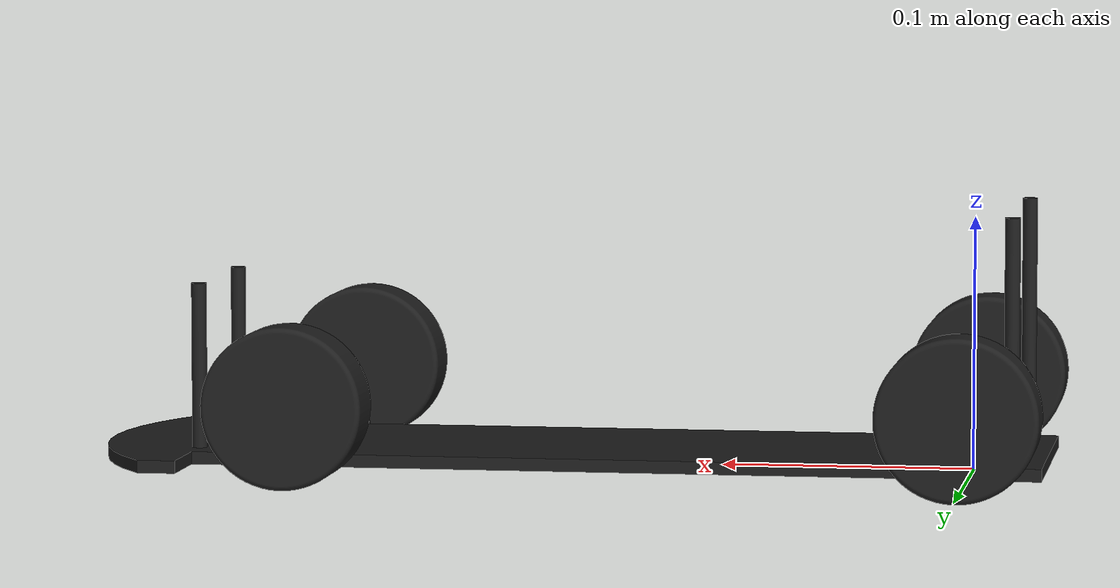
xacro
<?xml version="1.0"?>

<robot xmlns:xacro="http://www.ros.org/wiki/xacro" name="model_car">

    <xacro:property name="PI" value="3.1415926535897931"/>
    <xacro:property name="angle_limit" value="${PI/3.0}"/>
    <xacro:property name="wheel_width" value="0.001"/>

    <link name="base_link">
    </link>

    <link name="body">
        <inertial>
            <mass value="6"/>
            <origin xyz="0.15971917 0.00000000 0.00197764"/>
            <inertia ixx="0.0067970" ixy="0.0" ixz="-0.0008808"
                     iyy="0.0784672" iyz="0.0"
                     izz="0.0838770"/>
        </inertial>
        <visual>
            <origin xyz="0 0 0" rpy="0 0 0"/>
            <geometry>
                <mesh filename="package://car_robot_model/meshes/chassis.stl"/>
            </geometry>
            <material name="Black"/>
        </visual>
        <collision>
            <origin xyz="0 0 0" rpy="0 0 0"/>
            <geometry>
                <mesh filename="package://car_robot_model/meshes/chassis.stl"/>
            </geometry>
        </collision>
    </link>

    <joint name="base_link_to_body" type="fixed">
        <origin xyz="0.0 0 0.005" rpy="0 0 0"/>
        <parent link="base_link"/>
        <child link="body"/>
    </joint>

    <joint name="base_link_rear_left_wheel_joint" type="revolute">
        <origin xyz="0.0 -0.0825 0.03" rpy="${PI/2.0} 0 0"/>
        <axis xyz="0 0 1"/>
        <anchor xyz="0 0 0"/>
        <parent link="base_link"/>
        <child link="rear_left_wheel_link"/>
        <limit lower="-1000000000000.0" upper="1000000000000.0" effort="3.0" velocity="124"/>
    </joint>

    <transmission name="tran_rear_left">
        <type>transmission_interface/SimpleTransmission</type>
        <joint name="base_link_rear_left_wheel_joint">
            <hardwareInterface>hardware_interface/EffortJointInterface</hardwareInterface>
        </joint>
        <actuator name="rear_left_motor">
            <hardwareInterface>hardware_interface/EffortJointInterface</hardwareInterface>
            <mechanicalReduction>1</mechanicalReduction>
        </actuator>
    </transmission>

    <link name="rear_left_wheel_link">
        <inertial>
            <mass value="1"/>
            <origin xyz="0 0 0" rpy="0 0 0"/>
            <inertia ixx="0.0002946" ixy="0.0" ixz="0.0"
                     iyy="0.0002946" iyz="0.0"
                     izz="0.000494"/>
        </inertial>
        <visual>
            <origin xyz="0 0 0" rpy="0 0 0"/>
            <geometry>
                <mesh filename="package://car_robot_model/meshes/wheel.stl"/>
            </geometry>
            <material name="Black"/>
        </visual>
        <collision>
            <origin xyz="0 0 0" rpy="0 0 0"/>
            <geometry>
                <cylinder radius="0.0315" length="${wheel_width}"/>
            </geometry>
        </collision>
    </link>

    <joint name="base_link_rear_right_wheel_joint" type="revolute">
        <origin xyz="0.0 0.0825 0.03" rpy="-${PI/2.0} 0 0"/>
        <axis xyz="0 0 1"/>
        <anchor xyz="0 0 0"/>
        <parent link="base_link"/>
        <child link="rear_right_wheel_link"/>
        <limit lower="-1000000000000.0" upper="1000000000000.0" effort="3.0" velocity="124"/>
    </joint>

    <transmission name="tran_rear_right">
        <type>transmission_interface/SimpleTransmission</type>
        <joint name="base_link_rear_right_wheel_joint">
            <hardwareInterface>hardware_interface/EffortJointInterface</hardwareInterface>
        </joint>
        <actuator name="rear_right_motor">
            <hardwareInterface>hardware_interface/EffortJointInterface</hardwareInterface>
            <mechanicalReduction>1</mechanicalReduction>
        </actuator>
    </transmission>

    <link name="rear_right_wheel_link">
        <inertial>
            <mass value="1"/>
            <origin xyz="0 0 0" rpy="0 0 0"/>
            <inertia ixx="0.0002946" ixy="0.0" ixz="0.0"
                     iyy="0.0002946" iyz="0.0"
                     izz="0.0004940"/>
        </inertial>
        <visual>
            <origin xyz="0 0 0" rpy="0 0 0"/>
            <geometry>
                <mesh filename="package://car_robot_model/meshes/wheel.stl"/>
            </geometry>
            <material name="Black"/>
        </visual>
        <collision>
            <origin xyz="0 0 0" rpy="0 0 0"/>
            <geometry>
                <cylinder radius="0.0315" length="${wheel_width}"/>
            </geometry>
        </collision>
    </link>

    <joint name="base_link_front_left_axel_joint" type="revolute">
        <origin xyz="0.260 -0.0825 0.03" rpy="${PI/2.0} 0 0"/>
        <axis xyz="0 1 0"/>
        <anchor xyz="0 0 0"/>
        <parent link="base_link"/>
        <child link="front_left_axel_link"/>
        <limit lower="-${angle_limit}" upper="${angle_limit}" effort="9.6" velocity="5.3"/>
        <dynamics damping="0.2"/>
    </joint>

    <transmission name="tran_front_left_axel">
        <type>transmission_interface/SimpleTransmission</type>
        <joint name="base_link_front_left_axel_joint">
            <hardwareInterface>hardware_interface/EffortJointInterface</hardwareInterface>
        </joint>
        <actuator name="front_left_axel_motor">
            <hardwareInterface>hardware_interface/EffortJointInterface</hardwareInterface>
            <mechanicalReduction>1</mechanicalReduction>
        </actuator>
    </transmission>

    <link name="front_left_axel_link">
        <inertial>
            <mass value="0.001"/>
            <origin xyz="0 0 0" rpy="0 0 0"/>
            <inertia ixx="0.00001" ixy="0.0" ixz="0.0"
                     iyy="0.00001" iyz="0.0"
                     izz="0.00001"/>
        </inertial>
    </link>

    <joint name="front_left_axel_front_left_wheel_joint" type="revolute">
        <origin xyz="0.0 0.0 0" rpy="0 0 0"/>
        <axis xyz="0 0 1"/>
        <anchor xyz="0 0 0"/>
        <parent link="front_left_axel_link"/>
        <child link="front_left_wheel_link"/>
        <limit lower="-1000000000000.0" upper="1000000000000.0" effort="3.0" velocity="124"/>
    </joint>

    <transmission name="tran_front_left_wheel">
        <type>transmission_interface/SimpleTransmission</type>
        <joint name="front_left_axel_front_left_wheel_joint">
            <hardwareInterface>hardware_interface/EffortJointInterface</hardwareInterface>
        </joint>
        <actuator name="front_left_wheel_motor">
            <hardwareInterface>hardware_interface/EffortJointInterface</hardwareInterface>
            <mechanicalReduction>1</mechanicalReduction>
        </actuator>
    </transmission>

    <link name="front_left_wheel_link">
        <inertial>
            <mass value="1"/>
            <origin xyz="0 0 0" rpy="0 0 0"/>
            <inertia ixx="0.0002946" ixy="0.0" ixz="0.0"
                     iyy="0.0002946" iyz="0.0"
                     izz="0.0004940"/>
        </inertial>
        <visual>
            <origin xyz="0 0 0" rpy="0 0 0"/>
            <geometry>
                <mesh filename="package://car_robot_model/meshes/wheel.stl"/>
            </geometry>
            <material name="Black"/>
        </visual>
        <collision>
            <origin xyz="0 0 0" rpy="0 0 0"/>
            <geometry>
                <cylinder radius="0.0315" length="${wheel_width}"/>
            </geometry>
        </collision>
    </link>

    <joint name="base_link_front_right_axel_joint" type="revolute">
        <origin xyz="0.260 0.0825 0.03" rpy="-${PI/2.0} 0 0"/>
        <axis xyz="0 1 0"/>
        <anchor xyz="0 0 0"/>
        <parent link="base_link"/>
        <child link="front_right_axel_link"/>
        <limit lower="-${angle_limit}" upper="${angle_limit}" effort="9.6" velocity="5.3"/>
        <dynamics damping="0.2"/>
    </joint>

    <transmission name="tran_front_right_axel">
        <type>transmission_interface/SimpleTransmission</type>
        <joint name="base_link_front_right_axel_joint">
            <hardwareInterface>hardware_interface/EffortJointInterface</hardwareInterface>
        </joint>
        <actuator name="front_right_axel_motor">
            <hardwareInterface>hardware_interface/EffortJointInterface</hardwareInterface>
            <mechanicalReduction>1</mechanicalReduction>
        </actuator>
    </transmission>

    <link name="front_right_axel_link">
        <inertial>
            <mass value="0.001"/>
            <origin xyz="0 0 0" rpy="0 0 0"/>
            <inertia ixx="0.00001" ixy="0.0" ixz="0.0"
                     iyy="0.00001" iyz="0.0"
                     izz="0.00001"/>
        </inertial>
    </link>

    <joint name="front_right_axel_front_right_wheel_joint" type="continuous">
        <origin xyz="0.0 0.0 0" rpy="0 0 0"/>
        <axis xyz="0 0 1"/>
        <anchor xyz="0 0 0"/>
        <parent link="front_right_axel_link"/>
        <child link="front_right_wheel_link"/>
        <limit lower="-1000000000000.0" upper="1000000000000.0" effort="3.0" velocity="124"/>
    </joint>

    <transmission name="tran_front_right_wheel">
        <type>transmission_interface/SimpleTransmission</type>
        <joint name="front_right_axel_front_right_wheel_joint">
            <hardwareInterface>hardware_interface/EffortJointInterface</hardwareInterface>
        </joint>
        <actuator name="front_right_wheel_motor">
            <hardwareInterface>hardware_interface/EffortJointInterface</hardwareInterface>
            <mechanicalReduction>1</mechanicalReduction>
        </actuator>
    </transmission>

    <link name="front_right_wheel_link">
        <inertial>
            <mass value="1"/>
            <origin xyz="0 0 0" rpy="0 0 0"/>
            <inertia ixx="0.0002946" ixy="0.0" ixz="0.0"
                     iyy="0.0002946" iyz="0.0"
                     izz="0.0004940"/>
        </inertial>
        <visual>
            <origin xyz="0 0 0" rpy="0 0 0"/>
            <geometry>
                <mesh filename="package://car_robot_model/meshes/wheel.stl"/>
            </geometry>
            <material name="Black"/>
        </visual>
        <collision>
            <origin xyz="0 0 0" rpy="0 0 0"/>
            <geometry>
                <cylinder radius="0.0315" length="${wheel_width}"/>
            </geometry>
        </collision>
    </link>

</robot>
